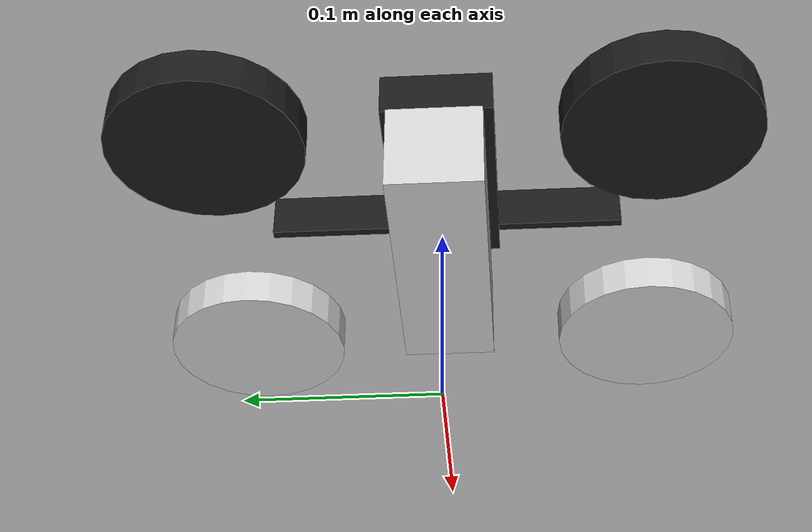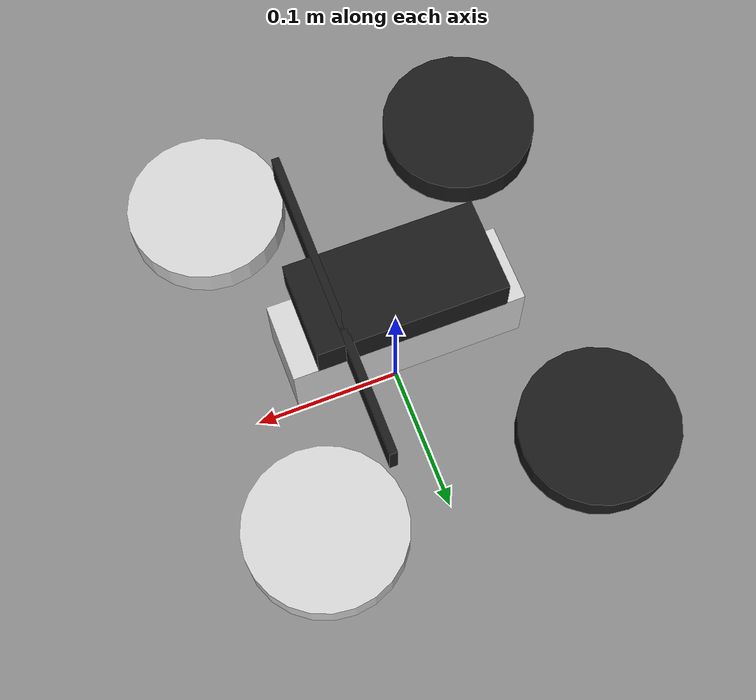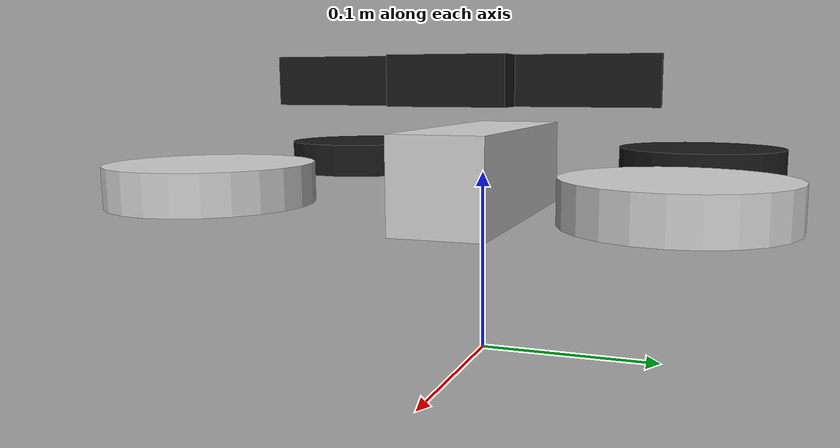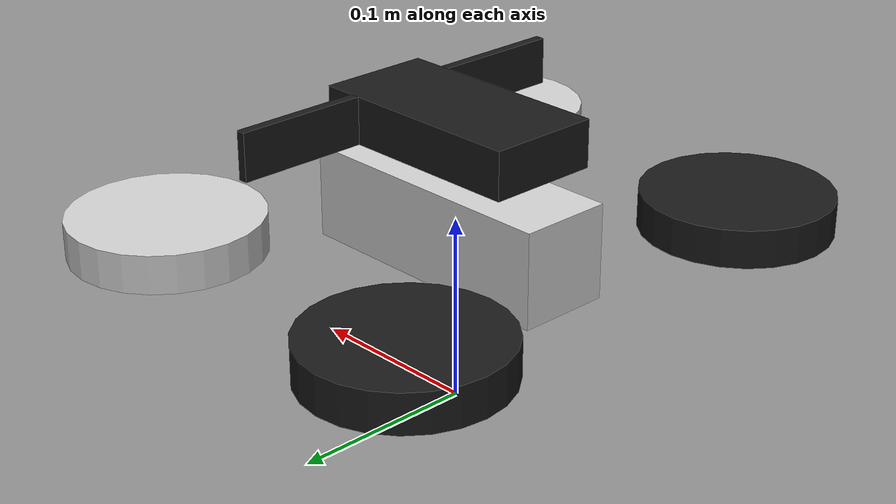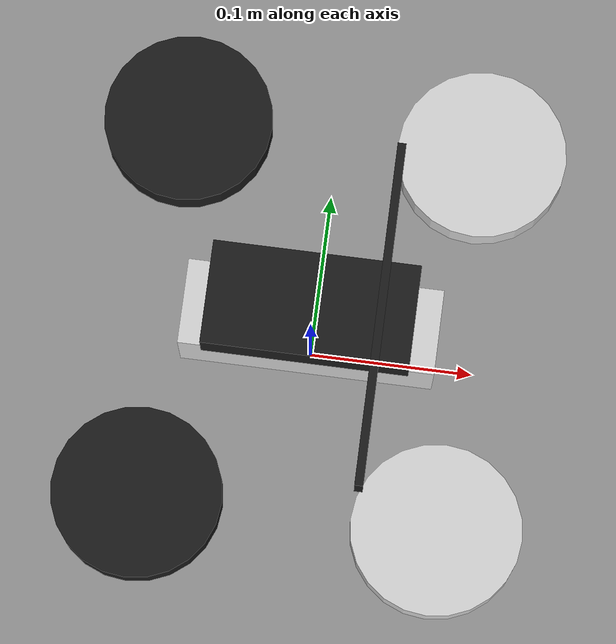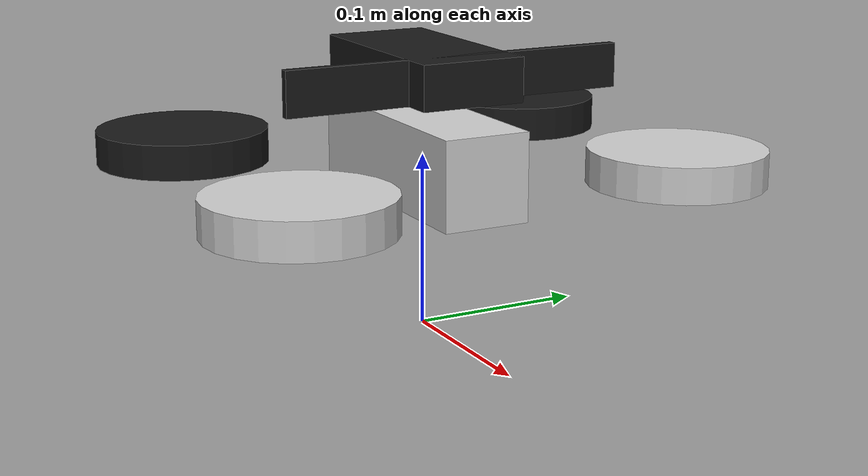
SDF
<?xml version='1.0'?>
<sdf version='1.9'>
  <model name="bebop2_with_slamdunk">
    <pose>0 0 .1 0 0 0</pose>

    <link name="chassis">

      <inertial>
        <mass>0.536</mass>
        <inertia>
          <ixx> 0.000906 </ixx>
          <iyy> 0.002225 </iyy>
          <izz> 0.002500 </izz>
          <ixy> 0. </ixy>
          <ixz> 0. </ixz>
          <iyz> 0. </iyz>
        </inertia>
      </inertial>

      <collision name="collision">
        <geometry>
          <box>
            <size>0.4 0.4 0.05</size>
          </box>
        </geometry>
      </collision>

      <visual name="visual">
        <geometry>
          <box>
            <size>0.15 0.05 0.05</size>
          </box>
        </geometry>
        <material>
          <diffuse>0.82 0.82 0.82 1</diffuse>
          <ambient>0.82 0.82 0.82 1</ambient>
        </material>
      </visual>

      <sensor name="contactsensor" type="contact">
        <contact>
          <collision>collision</collision>
        </contact>
      </sensor>
    </link>

    <!-- SLAMDUNK -->
    <include name="slamdunk">
      <uri>model://slamdunk</uri>
      <pose>0 0 .05 0 0 0</pose>
    </include>

    <joint type="fixed" name="slamdunk_joint">
      <parent>chassis</parent>
      <child>slamdunk::slamdunk_link</child>
    </joint>

    <!-- MOTORS -->
    <link name="nw_motor">
      <pose>0.0875 0.1125 0 0 0 0</pose>
      <inertial>
        <mass>0.01</mass>
        <inertia>
          <ixx>0.0001</ixx>
          <iyy>0.0001</iyy>
          <izz>0.0001</izz>
          <ixy>0</ixy>
          <iyz>0</iyz>
          <ixz>0</ixz>
        </inertia>
      </inertial>
      <visual name="visual">
        <geometry>
          <cylinder>
            <radius>0.05</radius>
            <length>0.02</length>
          </cylinder>
        </geometry>
        <material>
          <diffuse>0.82 0.82 0.82 1</diffuse>
          <ambient>0.82 0.82 0.82 1</ambient>
        </material>
      </visual>
    </link>

    <joint type="fixed" name="nw_motor_joint">
      <parent>chassis</parent>
      <child>nw_motor</child>
    </joint>

    <link name="se_motor">
      <pose>-0.0875 -0.1125 0 0 0 0</pose>
      <inertial>
        <mass>0.01</mass>
        <inertia>
          <ixx>0.0001</ixx>
          <iyy>0.0001</iyy>
          <izz>0.0001</izz>
          <ixy>0</ixy>
          <iyz>0</iyz>
          <ixz>0</ixz>
        </inertia>
      </inertial>
      <visual name="visual">
        <geometry>
          <cylinder>
            <radius>0.05</radius>
            <length>0.02</length>
          </cylinder>
        </geometry>
        <material>
          <diffuse>0.1 0.1 0.1 1</diffuse>
          <ambient>0.1 0.1 0.1 1</ambient>
        </material>
      </visual>
    </link>

    <joint type="fixed" name="se_motor_joint">
      <parent>chassis</parent>
      <child>se_motor</child>
    </joint>

    <link name="ne_motor">
      <pose>0.0875 -0.1125 0 0 0 0</pose>
      <inertial>
        <mass>0.01</mass>
        <inertia>
          <ixx>0.0001</ixx>
          <iyy>0.0001</iyy>
          <izz>0.0001</izz>
          <ixy>0</ixy>
          <iyz>0</iyz>
          <ixz>0</ixz>
        </inertia>
      </inertial>
      <visual name="visual">
        <geometry>
          <cylinder>
            <radius>0.05</radius>
            <length>0.02</length>
          </cylinder>
        </geometry>
        <material>
          <diffuse>0.82 0.82 0.82 1</diffuse>
          <ambient>0.82 0.82 0.82 1</ambient>
        </material>
      </visual>
    </link>

    <joint type="fixed" name="ne_motor_joint">
      <parent>chassis</parent>
      <child>ne_motor</child>
    </joint>

    <link name="sw_motor">
      <pose>-0.0875 0.1125 0 0 0 0</pose>
      <inertial>
        <mass>0.01</mass>
        <inertia>
          <ixx>0.0001</ixx>
          <iyy>0.0001</iyy>
          <izz>0.0001</izz>
          <ixy>0</ixy>
          <iyz>0</iyz>
          <ixz>0</ixz>
        </inertia>
      </inertial>
      <visual name="visual">
        <geometry>
          <cylinder>
            <radius>0.05</radius>
            <length>0.02</length>
          </cylinder>
        </geometry>
        <material>
          <diffuse>0.1 0.1 0.1 1</diffuse>
          <ambient>0.1 0.1 0.1 1</ambient>
        </material>
      </visual>
    </link>

    <joint type="fixed" name="sw_motor_joint">
      <parent>chassis</parent>
      <child>sw_motor</child>
    </joint>

    <link name="sonar">
      <pose>0 0 0 0 0 0</pose>
      <inertial>
        <mass>0.001</mass>
        <inertia>
          <ixx>0.0001</ixx>
          <iyy>0.0001</iyy>
          <izz>0.0001</izz>
          <ixy>0</ixy>
          <iyz>0</iyz>
          <ixz>0</ixz>
        </inertia>
      </inertial>
      <sensor name="sonarsensor" type="sonar">
        <sonar>
          <min>0.20</min>
          <max>5.0</max>
          <radius>0.50</radius>
        </sonar>
      </sensor>
    </link>

    <joint name="sonar_joint" type="fixed">
      <parent>chassis</parent>
      <child>sonar</child>
    </joint>

    <!-- CAMERAS -->

    <link name="front_camera">
      <pose>0.15 0 0 -1.57 0.33 0</pose><!-- Bebop camera output is rotated 90 degrees and pitched slightly downwards -->
      <inertial>
        <mass>0.001</mass>
        <inertia>
          <ixx>0.0001</ixx>
          <iyy>0.0001</iyy>
          <izz>0.0001</izz>
          <ixy>0</ixy>
          <iyz>0</iyz>
          <ixz>0</ixz>
        </inertia>
      </inertial>
      <sensor type="wideanglecamera" name="mt9f002">
        <update_rate>15.0</update_rate><!-- adjust with MT9F002_TARGET_FPS -->
        <camera>
          <image>
            <width>4608</width><!-- Full sensor resolution -->
            <height>3288</height><!-- Full sensor resolution -->
            <format>R8G8B8</format>
          </image>
          <horizontal_fov>3.7</horizontal_fov>
          <lens>
            <type>equisolid_angle</type>
            <scale_to_hfov>true</scale_to_hfov>
            <cutoff_angle>1.8</cutoff_angle>
            <env_texture_size>2048</env_texture_size><!-- with MT9F002_ZOOM = 1.00, will be scaled by NPS -->
          </lens>
          <clip>
            <near>0.01</near>
            <far>300</far>
          </clip>
          <noise>
            <type>gaussian</type>
            <!-- Noise is sampled independently per pixel on each frame. That pixel's
              noise value is added to each of its color channels, which at that point lie
              in the range [0,1]. -->
            <mean>0.0</mean>
            <stddev>0.007</stddev>
          </noise>
        </camera>
      </sensor>
    </link>

    <joint name="front_camera_joint" type="fixed">
      <parent>chassis</parent>
      <child>front_camera</child>
    </joint>

    <link name="bottom_camera">
      <pose>0 0 0 0 1.57 0</pose>
      <inertial>
        <mass>0.001</mass>
        <inertia>
          <ixx>0.0001</ixx>
          <iyy>0.0001</iyy>
          <izz>0.0001</izz>
          <ixy>0</ixy>
          <iyz>0</iyz>
          <ixz>0</ixz>
        </inertia>
      </inertial>
      <sensor type="camera" name="mt9v117">
        <update_rate>90.0</update_rate>
        <camera>
          <horizontal_fov>0.7175</horizontal_fov>
          <image>
            <width>240</width>
            <height>240</height>
            <format>R8G8B8</format>
          </image>
          <clip>
            <near>0.02</near>
            <far>300</far>
          </clip>
          <noise>
            <type>gaussian</type>
            <!-- Noise is sampled independently per pixel on each frame. That pixel's
              noise value is added to each of its color channels, which at that point lie
              in the range [0,1]. -->
            <mean>0.0</mean>
            <stddev>0.007</stddev>
          </noise>
        </camera>
      </sensor>
    </link>

    <joint name="bottom_camera_joint" type="fixed">
      <parent>chassis</parent>
      <child>bottom_camera</child>
    </joint>
  </model>
</sdf>

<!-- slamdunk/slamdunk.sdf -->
<sdf version='1.9'>
  <model name="slamdunk">
    <link name="slamdunk_link">
      <visual name="visual">
        <geometry>
          <box>
            <size>0.12 0.06 0.025</size>
          </box>
        </geometry>
        <material>
          <diffuse>0.1 0.1 0.1 1</diffuse>
          <ambient>0.1 0.1 0.1 1</ambient>
        </material>
      </visual>
      <visual name="visual2">
        <pose>0.04 0 0 0 0 0</pose>
        <geometry>
          <box>
            <size>0.005 0.2 0.025</size>
          </box>
        </geometry>
        <material>
          <diffuse>0.1 0.1 0.1 1</diffuse>
          <ambient>0.1 0.1 0.1 1</ambient>
        </material>
      </visual>
      <inertial>
        <mass>0.135</mass>
        <inertia>
          <ixx> 0.00010 </ixx>
          <iyy> 0.00020 </iyy>
          <izz> 0.00020 </izz>
        </inertia>
      </inertial>
      <collision name="slamdunk_collision">
        <geometry>
          <box>
            <size>0.12 0.06 0.025</size>
          </box>
        </geometry>
      </collision>
      <sensor type="camera" name="left_rgb_rect">
        <pose>0.05 0.1 0 0 0 0</pose>
        <update_rate>30.0</update_rate>
        <camera name="left_rgb_rect_cam">
          <horizontal_fov>1.19</horizontal_fov>
          <image>
            <width>576</width>
            <height>576</height>
            <format>R8G8B8</format>
          </image>
          <clip>
            <near>0.02</near>
            <far>1000</far>
          </clip>
        </camera>
        <plugin name="left_cam_controller" filename="libgazebo_ros_camera.so">
          <alwaysOn>true</alwaysOn>
          <updateRate>30.0</updateRate>
          <cameraName>left_rgb_rect</cameraName>
          <imageTopicName>image_rect_color</imageTopicName>
          <cameraInfoTopicName>camera_info</cameraInfoTopicName>
          <frameName>cam_optical_frame2</frameName>
        </plugin>
      </sensor>
      <sensor type="camera" name="right_rgb_rect">
        <pose>0.05 -0.1 0 0 0 0</pose>
        <update_rate>30.0</update_rate>
        <camera name="right_rgb_rect_cam">
          <horizontal_fov>1.19</horizontal_fov>
          <image>
            <width>576</width>
            <height>576</height>
            <format>R8G8B8</format>
          </image>
          <clip>
            <near>0.02</near>
            <far>1000</far>
          </clip>
        </camera>
        <plugin name="right_cam_controller" filename="libgazebo_ros_camera.so">
          <alwaysOn>true</alwaysOn>
          <updateRate>30.0</updateRate>
          <cameraName>right_rgb_rect</cameraName>
          <imageTopicName>image_rect_color</imageTopicName>
          <cameraInfoTopicName>camera_info</cameraInfoTopicName>
          <frameName>cam_optical_frame3</frameName>
        </plugin>
      </sensor>
      <sensor type="imu" name="imu_sensor">
        <update_rate>200</update_rate>
        <imu>
        </imu>
        <plugin name="imu_controller" filename="libgazebo_ros_imu_sensor.so">
          <alwaysOn>true</alwaysOn>
          <updateRateHZ>0.0</updateRateHZ>
          <robotNamespace></robotNamespace>
          <topicName>imu</topicName>
          <bodyName>slamdunk_link</bodyName>
          <frameName>slamdunk_link</frameName>
        </plugin>
      </sensor>
    </link>
  </model>
</sdf>
